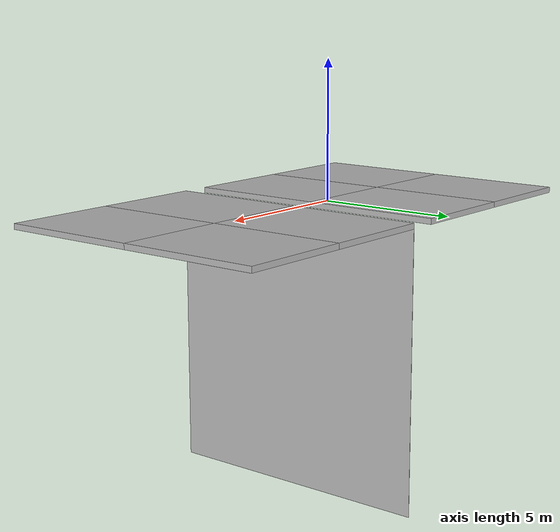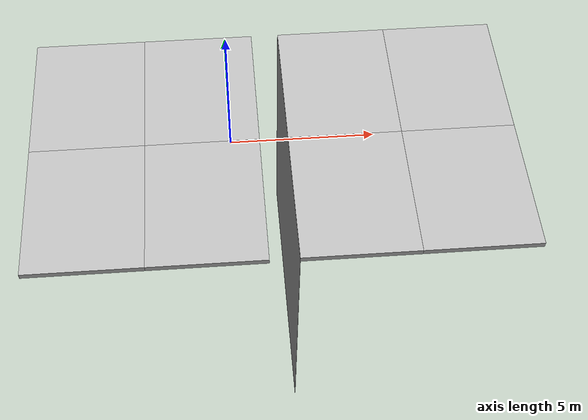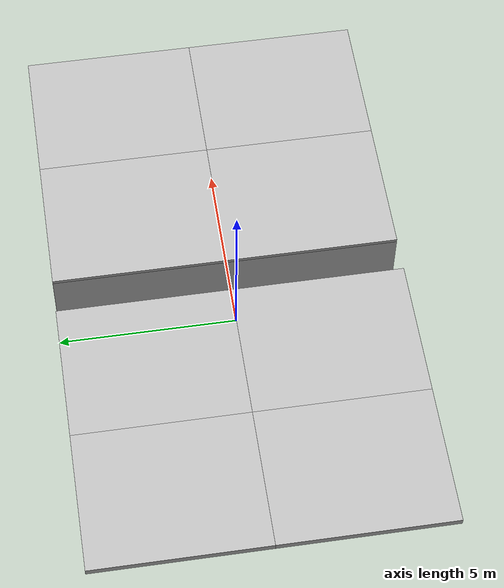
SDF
<?xml version="1.0"?>
<sdf version="1.4">
<world name="default">
    <include>
        <uri>model://sun</uri>
    </include>

    <physics type='ode'>
      <max_step_size>0.01</max_step_size>
      <real_time_factor>1</real_time_factor>
      <real_time_update_rate>100</real_time_update_rate>
      <gravity>0 0 -9.8</gravity>
    </physics>

    <model name='mud_box_1'>
        <static>1</static>
        <link name='link'>
          <collision name='collision'>
            <geometry>
              <box>
                <size>8 10 0.2</size>
              </box>
            </geometry>
            <max_contacts>10</max_contacts>
            <surface>
              <bounce/>
              <friction>
                <ode/>
              </friction>
              <contact>
                <ode/>
              </contact>
            </surface>
          </collision>
          <visual name='visual_1'>
            <pose>-2 2.5 0 0 -0 0</pose>
            <cast_shadows>0</cast_shadows>
            <geometry>
              <box>
                <size>4 5 0.2</size>
              </box>
            </geometry>
            <material>
              <script>
                <uri>model://mud_box/materials/scripts</uri>
                <uri>model://mud_box/materials/textures</uri>
                <name>vrc/mud</name>
              </script>
            </material>
          </visual>
          <visual name='visual_2'>
            <pose>2 2.5 0 0 -0 0</pose>
            <cast_shadows>0</cast_shadows>
            <geometry>
              <box>
                <size>4 5 0.2</size>
              </box>
            </geometry>
            <material>
              <script>
                <uri>model://mud_box/materials/scripts</uri>
                <uri>model://mud_box/materials/textures</uri>
                <name>vrc/mud</name>
              </script>
            </material>
          </visual>
          <visual name='visual_3'>
            <pose>2 -2.5 0 0 -0 0</pose>
            <cast_shadows>0</cast_shadows>
            <geometry>
              <box>
                <size>4 5 0.2</size>
              </box>
            </geometry>
            <material>
              <script>
                <uri>model://mud_box/materials/scripts</uri>
                <uri>model://mud_box/materials/textures</uri>
                <name>vrc/mud</name>
              </script>
            </material>
          </visual>
          <visual name='visual_4'>
            <pose>-2 -2.5 0 0 -0 0</pose>
            <cast_shadows>0</cast_shadows>
            <geometry>
              <box>
                <size>4 5 0.2</size>
              </box>
            </geometry>
            <material>
              <script>
                <uri>model://mud_box/materials/scripts</uri>
                <uri>model://mud_box/materials/textures</uri>
                <name>vrc/mud</name>
              </script>
            </material>
          </visual>
          <velocity_decay>
            <linear>0</linear>
            <angular>0</angular>
          </velocity_decay>
          <self_collide>0</self_collide>
          <kinematic>0</kinematic>
          <gravity>1</gravity>
        </link>
        <pose>6 0 0 0 -0 0</pose>
      </model>
      <model name='bookshelf_0'>
        <static>1</static>
        <link name='link'>
          <inertial>
            <mass>1</mass>
          </inertial>
          <collision name='back'>
            <pose>0 0 0 0 0 1.57079633</pose>
            <geometry>
              <box>
                <size>10.0 0.01 10.0</size>
              </box>
            </geometry>
            <max_contacts>10</max_contacts>
            <surface>
              <bounce/>
              <friction>
                <ode/>
              </friction>
              <contact>
                <ode/>
              </contact>
            </surface>
          </collision>
          <visual name='visual1'>
            <pose>0 0 0 0 0 1.57079633</pose>
            <geometry>
              <box>
                <size>10.0 0.01 10.0</size>
              </box>
            </geometry>
            <material>
              <script>
                <uri>model://mud_box/materials/scripts</uri>
                <uri>model://mud_box/materials/textures</uri>
                <name>vrc/mud</name>
              </script>
            </material>
          </visual>
          <velocity_decay>
            <linear>0</linear>
            <angular>0</angular>
          </velocity_decay>
          <self_collide>0</self_collide>
          <kinematic>0</kinematic>
          <gravity>1</gravity>
        </link>
        <pose>2 0 -5 0 0 0</pose>
      </model>
      <model name='mud_box_2'>
        <static>1</static>
        <link name='link'>
          <collision name='collision'>
            <geometry>
              <box>
                <size>8 10 0.2</size>
              </box>
            </geometry>
            <max_contacts>10</max_contacts>
            <surface>
              <bounce/>
              <friction>
                <ode/>
              </friction>
              <contact>
                <ode/>
              </contact>
            </surface>
          </collision>
          <visual name='visual_1'>
            <pose>-2 2.5 0 0 -0 0</pose>
            <cast_shadows>0</cast_shadows>
            <geometry>
              <box>
                <size>4 5 0.2</size>
              </box>
            </geometry>
            <material>
              <script>
                <uri>model://mud_box/materials/scripts</uri>
                <uri>model://mud_box/materials/textures</uri>
                <name>vrc/mud</name>
              </script>
            </material>
          </visual>
          <visual name='visual_2'>
            <pose>2 2.5 0 0 -0 0</pose>
            <cast_shadows>0</cast_shadows>
            <geometry>
              <box>
                <size>4 5 0.2</size>
              </box>
            </geometry>
            <material>
              <script>
                <uri>model://mud_box/materials/scripts</uri>
                <uri>model://mud_box/materials/textures</uri>
                <name>vrc/mud</name>
              </script>
            </material>
          </visual>
          <visual name='visual_3'>
            <pose>2 -2.5 0 0 -0 0</pose>
            <cast_shadows>0</cast_shadows>
            <geometry>
              <box>
                <size>4 5 0.2</size>
              </box>
            </geometry>
            <material>
              <script>
                <uri>model://mud_box/materials/scripts</uri>
                <uri>model://mud_box/materials/textures</uri>
                <name>vrc/mud</name>
              </script>
            </material>
          </visual>
          <visual name='visual_4'>
            <pose>-2 -2.5 0 0 -0 0</pose>
            <cast_shadows>0</cast_shadows>
            <geometry>
              <box>
                <size>4 5 0.2</size>
              </box>
            </geometry>
            <material>
              <script>
                <uri>model://mud_box/materials/scripts</uri>
                <uri>model://mud_box/materials/textures</uri>
                <name>vrc/mud</name>
              </script>
            </material>
          </visual>
          <velocity_decay>
            <linear>0</linear>
            <angular>0</angular>
          </velocity_decay>
          <self_collide>0</self_collide>
          <kinematic>0</kinematic>
          <gravity>1</gravity>
        </link>
        <pose>-3 0 0 0 -0 0</pose>
      </model>

</world>
</sdf>
